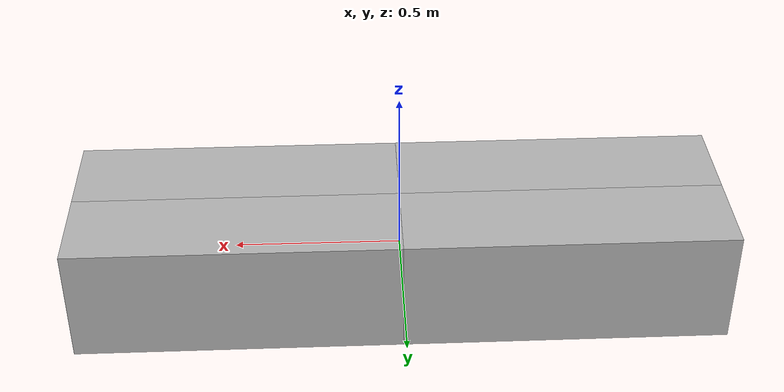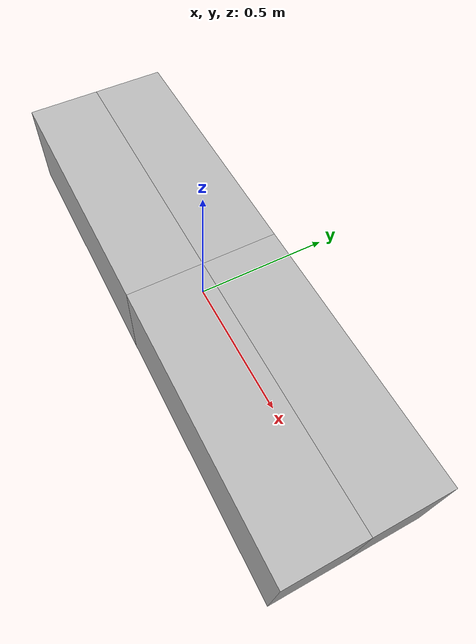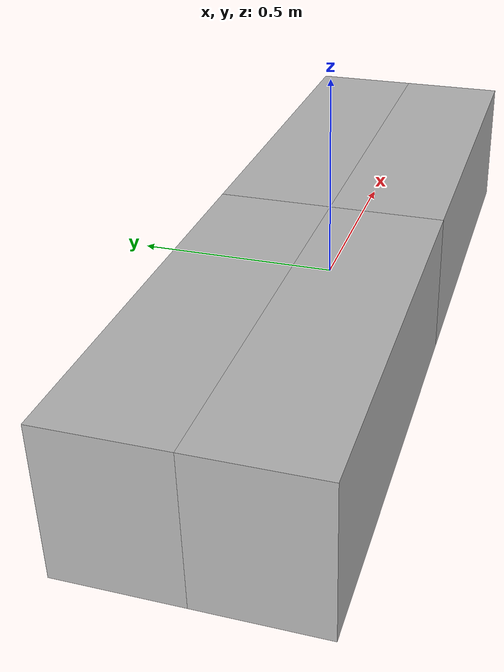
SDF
<?xml version="1.0"?>

<sdf version="1.7">
  <world name="motorboat_model">

    <scene>
      <ambient>0.0 1.0 1.0</ambient>
      <background>0.0 0.7 0.8</background>

      <grid>false</grid>
    </scene>

    <light type="directional" name="sun">
      <cast_shadows>true</cast_shadows>
      <pose>0 0 10 0 0 0</pose>
      <diffuse>1 1 1 1</diffuse>
      <specular>0.5 0.5 0.5 1</specular>
      <attenuation>
        <range>1000</range>
        <constant>0.9</constant>
        <linear>0.01</linear>
        <quadratic>0.001</quadratic>
      </attenuation>
      <direction>-0.5 0.1 -0.9</direction>
    </light>

    <spherical_coordinates>
      <surface_model>EARTH_WGS84</surface_model>
      <world_frame_orientation>ENU</world_frame_orientation>
      <latitude_deg>0</latitude_deg>
      <longitude_deg>0</longitude_deg>
      <elevation>0</elevation>
      <heading_deg>0</heading_deg>
    </spherical_coordinates>

    <plugin
      filename="gz-sim-physics-system"
      name="gz::sim::systems::Physics">
    </plugin>

    <plugin
      filename="gz-sim-buoyancy-system"
      name="gz::sim::systems::Buoyancy">
      <graded_buoyancy>
        <default_density>1025</default_density>
        <density_change>
          <above_depth>0</above_depth>
          <density>1.125</density>
        </density_change>
      </graded_buoyancy>
    </plugin>

    <plugin
      filename="gz-sim-user-commands-system"
      name="gz::sim::systems::UserCommands">
    </plugin>

    <plugin
      filename="gz-sim-scene-broadcaster-system"
      name="gz::sim::systems::SceneBroadcaster">
    </plugin>

    <plugin
      filename="gz-sim-sensors-system"
      name="gz::sim::systems::Sensors">
    </plugin>

    <plugin
      filename="gz-sim-navsat-system"
      name="gz::sim::systems::NavSat">
    </plugin>

    <gui fullscreen="0">
      <!-- 3D scene -->
      <plugin filename="MinimalScene" name="3D View">
        <gz-gui>
          <title>3D View</title>
          <property type="bool" key="showTitleBar">false</property>
          <property type="string" key="state">docked</property>
        </gz-gui>
        <engine>ogre2</engine>
        <scene>scene</scene>
        <ambient_light>0.4 0.4 0.4</ambient_light>
        <background_color>0.8 0.8 0.8</background_color>
        <!-- looking at robot -->
        <camera_pose>0 6 6 0 0.5 -1.57</camera_pose>
        <!-- looking at all science data for 2003080103_mb_l3_las.csv -->
        <camera_clip>
          <!-- ortho view needs low near clip -->
          <!-- but a very low near clip messes orbit's far clip ?! -->
          <near>0.1</near>
          <!-- See 3000 km away -->
          <far>3000000</far>
        </camera_clip>
      </plugin>
      <!-- Plugins that add functionality to the scene -->
      <plugin filename="EntityContextMenuPlugin" name="Entity context menu">
        <gz-gui>
          <property key="state" type="string">floating</property>
          <property key="width" type="double">5</property>
          <property key="height" type="double">5</property>
          <property key="showTitleBar" type="bool">false</property>
        </gz-gui>
      </plugin>
      <plugin filename="GzSceneManager" name="Scene Manager">
        <gz-gui>
          <anchors target="3D View">
            <line own="right" target="right" />
            <line own="top" target="top" />
          </anchors>
          <property key="resizable" type="bool">false</property>
          <property key="width" type="double">5</property>
          <property key="height" type="double">5</property>
          <property key="state" type="string">floating</property>
          <property key="showTitleBar" type="bool">false</property>
        </gz-gui>
      </plugin>
      <plugin filename="InteractiveViewControl" name="Interactive view control">
        <gz-gui>
          <anchors target="3D View">
            <line own="right" target="right" />
            <line own="top" target="top" />
          </anchors>
          <property key="resizable" type="bool">false</property>
          <property key="width" type="double">5</property>
          <property key="height" type="double">5</property>
          <property key="state" type="string">floating</property>
          <property key="showTitleBar" type="bool">false</property>
        </gz-gui>
      </plugin>
      <plugin filename="CameraTracking" name="Camera Tracking">
        <gz-gui>
          <anchors target="3D View">
            <line own="right" target="right" />
            <line own="top" target="top" />
          </anchors>
          <property key="resizable" type="bool">false</property>
          <property key="width" type="double">5</property>
          <property key="height" type="double">5</property>
          <property key="state" type="string">floating</property>
          <property key="showTitleBar" type="bool">false</property>
        </gz-gui>
      </plugin>
      <plugin filename="MarkerManager" name="Marker manager">
        <gz-gui>
          <anchors target="3D View">
            <line own="right" target="right" />
            <line own="top" target="top" />
          </anchors>
          <property key="resizable" type="bool">false</property>
          <property key="width" type="double">5</property>
          <property key="height" type="double">5</property>
          <property key="state" type="string">floating</property>
          <property key="showTitleBar" type="bool">false</property>
        </gz-gui>
        <warn_on_action_failure>false</warn_on_action_failure>
      </plugin>
      <plugin filename="SelectEntities" name="Select Entities">
        <gz-gui>
          <anchors target="Select entities">
            <line own="right" target="right" />
            <line own="top" target="top" />
          </anchors>
          <property key="resizable" type="bool">false</property>
          <property key="width" type="double">5</property>
          <property key="height" type="double">5</property>
          <property key="state" type="string">floating</property>
          <property key="showTitleBar" type="bool">false</property>
        </gz-gui>
      </plugin>
      <plugin filename="VisualizationCapabilities" name="Visualization Capabilities">
        <gz-gui>
          <anchors target="Select entities">
            <line own="right" target="right" />
            <line own="top" target="top" />
          </anchors>
          <property key="resizable" type="bool">false</property>
          <property key="width" type="double">5</property>
          <property key="height" type="double">5</property>
          <property key="state" type="string">floating</property>
          <property key="showTitleBar" type="bool">false</property>
        </gz-gui>
      </plugin>
      <plugin filename="Spawn" name="Spawn Entities">
        <gz-gui>
          <anchors target="Select entities">
            <line own="right" target="right" />
            <line own="top" target="top" />
          </anchors>
          <property key="resizable" type="bool">false</property>
          <property key="width" type="double">5</property>
          <property key="height" type="double">5</property>
          <property key="state" type="string">floating</property>
          <property key="showTitleBar" type="bool">false</property>
        </gz-gui>
      </plugin>
      <!-- World control -->
      <plugin filename="WorldControl" name="World control">
        <gz-gui>
          <title>World control</title>
          <property type="bool" key="showTitleBar">false</property>
          <property type="bool" key="resizable">false</property>
          <property type="double" key="height">72</property>
          <property type="double" key="width">121</property>
          <property type="double" key="z">1</property>
          <property type="string" key="state">floating</property>
          <anchors target="3D View">
            <line own="left" target="left" />
            <line own="bottom" target="bottom" />
          </anchors>
        </gz-gui>
        <play_pause>true</play_pause>
        <step>true</step>
        <start_paused>false</start_paused>
      </plugin>
      <!-- World statistics -->
      <plugin filename="WorldStats" name="World stats">
        <gz-gui>
          <title>World stats</title>
          <property type="bool" key="showTitleBar">false</property>
          <property type="bool" key="resizable">false</property>
          <property type="double" key="height">110</property>
          <property type="double" key="width">290</property>
          <property type="double" key="z">1</property>
          <property type="string" key="state">floating</property>
          <anchors target="3D View">
            <line own="right" target="right" />
            <line own="bottom" target="bottom" />
          </anchors>
        </gz-gui>
        <sim_time>true</sim_time>
        <real_time>true</real_time>
        <real_time_factor>true</real_time_factor>
        <iterations>true</iterations>
      </plugin>
      <plugin filename="ComponentInspector" name="Component Inspector">
        <gz-gui>
          <title>Inspector</title>
          <property type="string" key="state">docked_collapsed</property>
        </gz-gui>
      </plugin>
      <plugin filename="GridConfig" name="Grid config">
        <gz-gui>
          <property type="string" key="state">docked_collapsed</property>
        </gz-gui>
        <insert>
          <!-- 300 km x 300 km -->
          <cell_count>6</cell_count>
          <vertical_cell_count>0</vertical_cell_count>
          <!-- 50 km -->
          <cell_length>50000</cell_length>
          <pose>0 100000 0 0 0 0.32</pose>
          <color>0 1 0 1</color>
        </insert>
        <insert>
          <!-- 0.1 km x 0.1 km -->
          <cell_count>100</cell_count>
          <vertical_cell_count>0</vertical_cell_count>
          <cell_length>1</cell_length>
          <pose>0 0 0 0 0 0</pose>
          <color>0.5 0.5 0.5 1</color>
        </insert>
      </plugin>
    </gui>

    <!-- This invisible plane helps with orbiting the camera, especially at large scales -->
    <model name="horizontal_plane">
      <static>true</static>
      <link name="link">
        <visual name="visual">
          <geometry>
            <plane>
              <normal>0 0 1</normal>
              <!-- 300 km x 300 km -->
              <size>300000 300000</size>
            </plane>
          </geometry>
          <transparency>1.0</transparency>
        </visual>
      </link>
    </model>

    <!-- Physics parameters -->
    <physics name="1ms" type="dart">
      <max_step_size>0.01</max_step_size>
      <real_time_factor>5</real_time_factor>
    </physics>

    <model name="my_ship">
      <link name='base_link'>
        <sensor name="navsat" type="navsat">
          <always_on>1</always_on>
          <update_rate>50</update_rate>
          <topic>/motorboat_simulation/position</topic>
        </sensor>
      </link>

      <plugin
        filename="gz-sim-odometry-publisher-system"
        name="gz::sim::systems::OdometryPublisher">
        <odom_topic>/motorboat_simulation/odometry</odom_topic>
      </plugin>

      <!-- IMU sensor -->
      <plugin filename="gz-sim-imu-system"
        name="gz::sim::systems::Imu">
      </plugin>

      <link name='left_front_link'>
        <pose>0.48895 0.1397 0 0 0 0</pose>

        <inertial>
          <mass>39.52</mass>
          <inertia>
            <ixx>0.497982875</ixx>
            <ixy>0</ixy>
            <ixz>0</ixz>
            <iyy>1.03633556173</iyy>
            <iyz>0</iyz>
            <izz>1.03633556173</izz>
          </inertia>
        </inertial>

        <collision name='collision'>
          <geometry>
            <box>
              <size>0.9779 0.2794 0.3556</size>
            </box>
          </geometry>
        </collision>

        <visual name='visual'>
          <geometry>
            <box>
              <size>0.9779 0.2794 0.3556</size>
            </box>
          </geometry>
        </visual>
      </link>

      <link name='right_front_link'>
        <pose>0.48895 -0.1397 0 0 0 0</pose>

        <inertial>
          <mass>39.52</mass>
          <inertia>
            <ixx>0.497982875</ixx>
            <ixy>0</ixy>
            <ixz>0</ixz>
            <iyy>1.03633556173</iyy>
            <iyz>0</iyz>
            <izz>1.03633556173</izz>
          </inertia>
        </inertial>

        <collision name='collision'>
          <geometry>
            <box>
              <size>0.9779 0.2794 0.3556</size>
            </box>
          </geometry>
        </collision>

        <visual name='visual'>
          <geometry>
            <box>
              <size>0.9779 0.2794 0.3556</size>
            </box>
          </geometry>
        </visual>
      </link>

      <link name='right_back_link'>
        <pose>-0.48895 -0.1397 0 0 0 0</pose>

        <inertial>
          <mass>39.52</mass>
          <inertia>
            <ixx>0.497982875</ixx>
            <ixy>0</ixy>
            <ixz>0</ixz>
            <iyy>1.03633556173</iyy>
            <iyz>0</iyz>
            <izz>1.03633556173</izz>
          </inertia>
        </inertial>

        <collision name='collision'>
          <geometry>
            <box>
              <size>0.9779 0.2794 0.3556</size>
            </box>
          </geometry>
        </collision>

        <visual name='visual'>
          <geometry>
            <box>
              <size>0.9779 0.2794 0.3556</size>
            </box>
          </geometry>
        </visual>
      </link>

      <link name='left_back_link'>
        <pose>-0.48895 0.1397 0 0 0 0</pose>

        <inertial>
          <mass>39.52</mass>
          <inertia>
            <ixx>0.497982875</ixx>
            <ixy>0</ixy>
            <ixz>0</ixz>
            <iyy>1.03633556173</iyy>
            <iyz>0</iyz>
            <izz>1.03633556173</izz>
          </inertia>
        </inertial>

        <collision name='collision'>
          <geometry>
            <box>
              <size>0.9779 0.2794 0.3556</size>
            </box>
          </geometry>
        </collision>

        <visual name='visual'>
          <geometry>
            <box>
              <size>0.9779 0.2794 0.3556</size>
            </box>
          </geometry>
        </visual>
      </link>

      <joint name="left_front_joint" type="fixed">
        <parent>base_link</parent>
        <child>left_front_link</child>
      </joint>

      <joint name="right_front_joint" type="fixed">
        <parent>base_link</parent>
        <child>right_front_link</child>
      </joint>

      <joint name="right_back_joint" type="fixed">
        <parent>base_link</parent>
        <child>right_back_link</child>
      </joint>

      <joint name="left_back_joint" type="fixed">
        <parent>base_link</parent>
        <child>left_back_link</child>
      </joint>

      <link name="port_propeller_link">
        <pose>-.75 -0.10 -.222 0 0 0</pose>
        <inertial>
          <mass>2.3</mass>
          <inertia>
            <ixx>0.001218375</ixx>
            <ixy>0</ixy>
            <ixz>0</ixz>
            <iyy>0.001218375</iyy>
            <iyz>0</iyz>
            <izz>0.001218375</izz>
          </inertia>
        </inertial>

        <collision name="collision">
          <geometry>
            <box>
              <size>0.0855 0.0855 0.0855</size>
            </box>
          </geometry>
        </collision>

        <visual name="visual">
          <geometry>
            <box>
              <size>0.0855 0.0855 0.0855</size>
            </box>
          </geometry>
        </visual>
      </link>

      <joint name="port_propeller_joint" type="revolute">
        <parent>base_link</parent>
        <child>port_propeller_link</child>
        <axis>
          <xyz>1 0 0</xyz>
          <dynamics>
          </dynamics>
          <limit>
            <lower>-1e+12</lower>
            <upper>1e+12</upper>
          </limit>
        </axis>
      </joint>

      <link name="starboard_propeller_link">
        <pose>-.75 0.10 -.222 0 0 0</pose>
        <inertial>
          <mass>2.3</mass>
          <inertia>
            <ixx>0.001218375</ixx>
            <ixy>0</ixy>
            <ixz>0</ixz>
            <iyy>0.001218375</iyy>
            <iyz>0</iyz>
            <izz>0.001218375</izz>
          </inertia>
        </inertial>

        <collision name="collision">
          <geometry>
            <box>
              <size>0.0855 0.0855 0.0855</size>
            </box>
          </geometry>
        </collision>

        <visual name="visual">
          <geometry>
            <box>
              <size>0.0855 0.0855 0.0855</size>
            </box>
          </geometry>
        </visual>
      </link>

      <joint name="starboard_propeller_joint" type="revolute">
        <parent>base_link</parent>
        <child>starboard_propeller_link</child>
        <axis>
          <xyz>1 0 0</xyz>
          <dynamics>
          </dynamics>
          <limit>
            <lower>-1e+12</lower>
            <upper>1e+12</upper>
          </limit>
        </axis>
      </joint>

      <!-- Joint state publisher -->
      <plugin filename="gz-sim-joint-state-publisher-system"
        name="gz::sim::systems::JointStatePublisher">
        <joint_name>port_propeller_joint</joint_name>
        <joint_name>starboard_propeller_joint</joint_name>
      </plugin>

      <!-- Pose publisher -->
      <plugin filename="gz-sim-pose-publisher-system"
        name="gz::sim::systems::PosePublisher">
        <publish_link_pose>true</publish_link_pose>
        <publish_nested_model_pose>false</publish_nested_model_pose>
        <use_pose_vector_msg>true</use_pose_vector_msg>
      </plugin>

      <!-- Differential thrust propellers -->
      <plugin
        filename="gz-sim-thruster-system"
        name="gz::sim::systems::Thruster">
        <namespace>motorboat_simulation</namespace>
        <topic>desired_port_propeller_rpm</topic>
        <joint_name>port_propeller_joint</joint_name>
        <fluid_density>1025</fluid_density>
        <propeller_diameter>0.0855</propeller_diameter>
      </plugin>

      <plugin
        filename="gz-sim-thruster-system"
        name="gz::sim::systems::Thruster">
        <namespace>motorboat_simulation</namespace>
        <topic>desired_starboard_propeller_rpm</topic>
        <joint_name>starboard_propeller_joint</joint_name>
        <fluid_density>1025</fluid_density>
        <propeller_diameter>0.0855</propeller_diameter>
      </plugin>

      <!-- Drag on the hull parts below -->
       <plugin filename="libCustomLiftDrag.so"
        name="custom_lift_drag::CustomLiftDrag">
        <link0>left_front_link</link0>
        <link1>right_front_link</link1>
        <link2>left_back_link</link2>
        <link3>right_back_link</link3>
        <fluid_density>1025</fluid_density>
        <clmax>2</clmax>
        <cdmax>4</cdmax>
        <area>0.04967732</area>
        <upward>0 0 1</upward>
        <forward>1 0 0</forward>
      </plugin>

      <!-- Hydrodynamics on the hull parts -->
      <plugin
        filename="gz-sim-hydrodynamics-system"
        name="gz::sim::systems::Hydrodynamics">
        <link_name>left_front_link</link_name>
        <xUabsU>-60</xUabsU>
        <xU>-60</xU>
        <yVabsV>-120</yVabsV>
        <yV>-120</yV>
        <zWabsW>-120</zWabsW>
        <zW>-120</zW>
        <kPabsP>-12</kPabsP>
        <kP>-12</kP>
        <mQabsQ>-50</mQabsQ>
        <mQ>-50</mQ>
        <nRabsR>-12</nRabsR>
        <nR>-12</nR>
      </plugin>
      <plugin
        filename="gz-sim-hydrodynamics-system"
        name="gz::sim::systems::Hydrodynamics">
        <link_name>right_front_link</link_name>
        <xUabsU>-60</xUabsU>
        <xU>-60</xU>
        <yVabsV>-120</yVabsV>
        <yV>-120</yV>
        <zWabsW>-120</zWabsW>
        <zW>-120</zW>
        <kPabsP>-12</kPabsP>
        <kP>-12</kP>
        <mQabsQ>-50</mQabsQ>
        <mQ>-50</mQ>
        <nRabsR>-12</nRabsR>
        <nR>-12</nR>
      </plugin>
      <plugin
        filename="gz-sim-hydrodynamics-system"
        name="gz::sim::systems::Hydrodynamics">
        <link_name>right_back_link</link_name>
        <xUabsU>-60</xUabsU>
        <xU>-60</xU>
        <yVabsV>-120</yVabsV>
        <yV>-120</yV>
        <zWabsW>-120</zWabsW>
        <zW>-120</zW>
        <kPabsP>-12</kPabsP>
        <kP>-12</kP>
        <mQabsQ>-50</mQabsQ>
        <mQ>-50</mQ>
        <nRabsR>-12</nRabsR>
        <nR>-12</nR>
      </plugin>
      <plugin
        filename="gz-sim-hydrodynamics-system"
        name="gz::sim::systems::Hydrodynamics">
        <link_name>left_back_link</link_name>
        <xUabsU>-60</xUabsU>
        <xU>-60</xU>
        <yVabsV>-120</yVabsV>
        <yV>-120</yV>
        <zWabsW>-120</zWabsW>
        <zW>-120</zW>
        <kPabsP>-12</kPabsP>
        <kP>-12</kP>
        <mQabsQ>-50</mQabsQ>
        <mQ>-50</mQ>
        <nRabsR>-12</nRabsR>
        <nR>-12</nR>
      </plugin>

    </model>

  </world>
</sdf>
